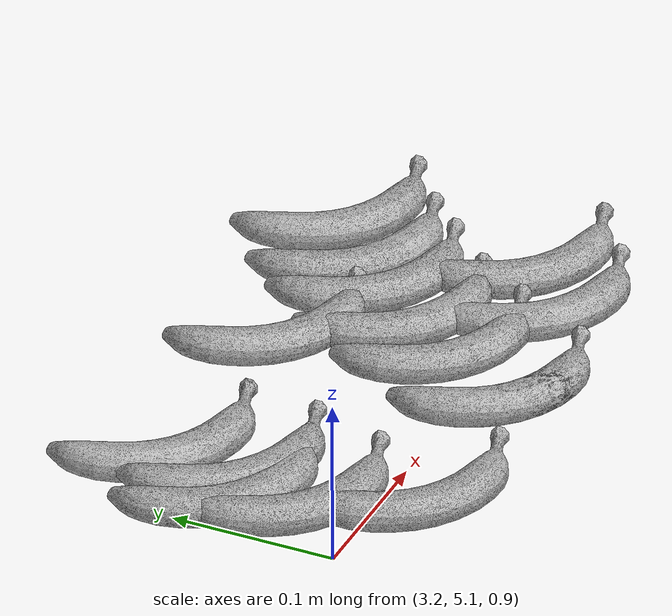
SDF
<sdf version="1.6">
 <world name="default">
  <model name="banana">
   <link name="link_0">
    <inertial>
     <mass>1</mass>
     <inertia>
      <ixx>0.166667</ixx>
      <ixy>0</ixy>
      <ixz>0</ixz>
      <iyy>0.166667</iyy>
      <iyz>0</iyz>
      <izz>0.166667</izz>
     </inertia>
    </inertial>
    <visual name="visual">
     <geometry><mesh><uri>model://banana/meshes/banana.dae</uri><scale>1 1 1</scale></mesh></geometry>
    </visual>
    <collision name="collision">
     <geometry><mesh><uri>model://banana/meshes/banana.dae</uri><scale>1 1 1</scale></mesh></geometry>
     <surface>
      <friction>
       <ode><mu>1</mu><mu2>1</mu2><fdir1>0 0 0</fdir1><slip1>0</slip1><slip2>0</slip2></ode>
       <torsional>
        <coefficient>1</coefficient>
        <patch_radius>0</patch_radius>
        <surface_radius>0</surface_radius>
        <use_patch_radius>1</use_patch_radius>
        <ode><slip>0</slip></ode>
       </torsional>
      </friction>
      <bounce><restitution_coefficient>0</restitution_coefficient><threshold>1e+06</threshold></bounce>
      <contact>
       <collide_without_contact>0</collide_without_contact>
       <collide_without_contact_bitmask>1</collide_without_contact_bitmask>
       <collide_bitmask>1</collide_bitmask>
       <ode>
        <soft_cfm>0</soft_cfm>
        <soft_erp>0.2</soft_erp>
        <kp>1e+13</kp>
        <kd>1</kd>
        <max_vel>0.01</max_vel>
        <min_depth>0</min_depth>
       </ode>
       <bullet>
        <split_impulse>1</split_impulse>
        <split_impulse_penetration_threshold>-0.01</split_impulse_penetration_threshold>
        <soft_cfm>0</soft_cfm>
        <soft_erp>0.2</soft_erp>
        <kp>1e+13</kp>
        <kd>1</kd>
       </bullet>
      </contact>
     </surface>
    </collision>
   </link>
   <static>1</static>
   <pose>3.44462 5.09797 0.868134 0 -0 0</pose>
  </model>
  <model name="banana_clone_0">
   <link name="link_0">
    <inertial>
     <mass>1</mass>
     <inertia>
      <ixx>0.166667</ixx>
      <ixy>0</ixy>
      <ixz>0</ixz>
      <iyy>0.166667</iyy>
      <iyz>0</iyz>
      <izz>0.166667</izz>
     </inertia>
    </inertial>
    <visual name="visual">
     <geometry><mesh><uri>model://banana/meshes/banana.dae</uri><scale>1 1 1</scale></mesh></geometry>
    </visual>
    <collision name="collision">
     <geometry><mesh><uri>model://banana/meshes/banana.dae</uri><scale>1 1 1</scale></mesh></geometry>
     <surface>
      <friction>
       <ode><mu>1</mu><mu2>1</mu2><fdir1>0 0 0</fdir1><slip1>0</slip1><slip2>0</slip2></ode>
       <torsional>
        <coefficient>1</coefficient>
        <patch_radius>0</patch_radius>
        <surface_radius>0</surface_radius>
        <use_patch_radius>1</use_patch_radius>
        <ode><slip>0</slip></ode>
       </torsional>
      </friction>
      <bounce><restitution_coefficient>0</restitution_coefficient><threshold>1e+06</threshold></bounce>
      <contact>
       <collide_without_contact>0</collide_without_contact>
       <collide_without_contact_bitmask>1</collide_without_contact_bitmask>
       <collide_bitmask>1</collide_bitmask>
       <ode>
        <soft_cfm>0</soft_cfm>
        <soft_erp>0.2</soft_erp>
        <kp>1e+13</kp>
        <kd>1</kd>
        <max_vel>0.01</max_vel>
        <min_depth>0</min_depth>
       </ode>
       <bullet>
        <split_impulse>1</split_impulse>
        <split_impulse_penetration_threshold>-0.01</split_impulse_penetration_threshold>
        <soft_cfm>0</soft_cfm>
        <soft_erp>0.2</soft_erp>
        <kp>1e+13</kp>
        <kd>1</kd>
       </bullet>
      </contact>
     </surface>
    </collision>
   </link>
   <static>1</static>
   <pose>3.58927 5.26962 0.868134 0 -0 0</pose>
  </model>
  <model name="banana_clone_1">
   <link name="link_0">
    <inertial>
     <mass>1</mass>
     <inertia>
      <ixx>0.166667</ixx>
      <ixy>0</ixy>
      <ixz>0</ixz>
      <iyy>0.166667</iyy>
      <iyz>0</iyz>
      <izz>0.166667</izz>
     </inertia>
    </inertial>
    <visual name="visual">
     <geometry><mesh><uri>model://banana/meshes/banana.dae</uri><scale>1 1 1</scale></mesh></geometry>
    </visual>
    <collision name="collision">
     <geometry><mesh><uri>model://banana/meshes/banana.dae</uri><scale>1 1 1</scale></mesh></geometry>
     <surface>
      <friction>
       <ode><mu>1</mu><mu2>1</mu2><fdir1>0 0 0</fdir1><slip1>0</slip1><slip2>0</slip2></ode>
       <torsional>
        <coefficient>1</coefficient>
        <patch_radius>0</patch_radius>
        <surface_radius>0</surface_radius>
        <use_patch_radius>1</use_patch_radius>
        <ode><slip>0</slip></ode>
       </torsional>
      </friction>
      <bounce><restitution_coefficient>0</restitution_coefficient><threshold>1e+06</threshold></bounce>
      <contact>
       <collide_without_contact>0</collide_without_contact>
       <collide_without_contact_bitmask>1</collide_without_contact_bitmask>
       <collide_bitmask>1</collide_bitmask>
       <ode>
        <soft_cfm>0</soft_cfm>
        <soft_erp>0.2</soft_erp>
        <kp>1e+13</kp>
        <kd>1</kd>
        <max_vel>0.01</max_vel>
        <min_depth>0</min_depth>
       </ode>
       <bullet>
        <split_impulse>1</split_impulse>
        <split_impulse_penetration_threshold>-0.01</split_impulse_penetration_threshold>
        <soft_cfm>0</soft_cfm>
        <soft_erp>0.2</soft_erp>
        <kp>1e+13</kp>
        <kd>1</kd>
       </bullet>
      </contact>
     </surface>
    </collision>
   </link>
   <static>1</static>
   <pose>3.55243 5.24171 0.868134 0 -0 0</pose>
  </model>
  <model name="banana_clone_2">
   <link name="link_0">
    <inertial>
     <mass>1</mass>
     <inertia>
      <ixx>0.166667</ixx>
      <ixy>0</ixy>
      <ixz>0</ixz>
      <iyy>0.166667</iyy>
      <iyz>0</iyz>
      <izz>0.166667</izz>
     </inertia>
    </inertial>
    <visual name="visual">
     <geometry><mesh><uri>model://banana/meshes/banana.dae</uri><scale>1 1 1</scale></mesh></geometry>
    </visual>
    <collision name="collision">
     <geometry><mesh><uri>model://banana/meshes/banana.dae</uri><scale>1 1 1</scale></mesh></geometry>
     <surface>
      <friction>
       <ode><mu>1</mu><mu2>1</mu2><fdir1>0 0 0</fdir1><slip1>0</slip1><slip2>0</slip2></ode>
       <torsional>
        <coefficient>1</coefficient>
        <patch_radius>0</patch_radius>
        <surface_radius>0</surface_radius>
        <use_patch_radius>1</use_patch_radius>
        <ode><slip>0</slip></ode>
       </torsional>
      </friction>
      <bounce><restitution_coefficient>0</restitution_coefficient><threshold>1e+06</threshold></bounce>
      <contact>
       <collide_without_contact>0</collide_without_contact>
       <collide_without_contact_bitmask>1</collide_without_contact_bitmask>
       <collide_bitmask>1</collide_bitmask>
       <ode>
        <soft_cfm>0</soft_cfm>
        <soft_erp>0.2</soft_erp>
        <kp>1e+13</kp>
        <kd>1</kd>
        <max_vel>0.01</max_vel>
        <min_depth>0</min_depth>
       </ode>
       <bullet>
        <split_impulse>1</split_impulse>
        <split_impulse_penetration_threshold>-0.01</split_impulse_penetration_threshold>
        <soft_cfm>0</soft_cfm>
        <soft_erp>0.2</soft_erp>
        <kp>1e+13</kp>
        <kd>1</kd>
       </bullet>
      </contact>
     </surface>
    </collision>
   </link>
   <static>1</static>
   <pose>3.49792 5.18513 0.868134 0 -0 0</pose>
  </model>
  <model name="banana_clone_3">
   <link name="link_0">
    <inertial>
     <mass>1</mass>
     <inertia>
      <ixx>0.166667</ixx>
      <ixy>0</ixy>
      <ixz>0</ixz>
      <iyy>0.166667</iyy>
      <iyz>0</iyz>
      <izz>0.166667</izz>
     </inertia>
    </inertial>
    <visual name="visual">
     <geometry><mesh><uri>model://banana/meshes/banana.dae</uri><scale>1 1 1</scale></mesh></geometry>
    </visual>
    <collision name="collision">
     <geometry><mesh><uri>model://banana/meshes/banana.dae</uri><scale>1 1 1</scale></mesh></geometry>
     <surface>
      <friction>
       <ode><mu>1</mu><mu2>1</mu2><fdir1>0 0 0</fdir1><slip1>0</slip1><slip2>0</slip2></ode>
       <torsional>
        <coefficient>1</coefficient>
        <patch_radius>0</patch_radius>
        <surface_radius>0</surface_radius>
        <use_patch_radius>1</use_patch_radius>
        <ode><slip>0</slip></ode>
       </torsional>
      </friction>
      <bounce><restitution_coefficient>0</restitution_coefficient><threshold>1e+06</threshold></bounce>
      <contact>
       <collide_without_contact>0</collide_without_contact>
       <collide_without_contact_bitmask>1</collide_without_contact_bitmask>
       <collide_bitmask>1</collide_bitmask>
       <ode>
        <soft_cfm>0</soft_cfm>
        <soft_erp>0.2</soft_erp>
        <kp>1e+13</kp>
        <kd>1</kd>
        <max_vel>0.01</max_vel>
        <min_depth>0</min_depth>
       </ode>
       <bullet>
        <split_impulse>1</split_impulse>
        <split_impulse_penetration_threshold>-0.01</split_impulse_penetration_threshold>
        <soft_cfm>0</soft_cfm>
        <soft_erp>0.2</soft_erp>
        <kp>1e+13</kp>
        <kd>1</kd>
       </bullet>
      </contact>
     </surface>
    </collision>
   </link>
   <static>1</static>
   <pose>3.52892 5.21734 0.868134 0 -0 0</pose>
  </model>
  <model name="banana_clone_6">
   <link name="link_0">
    <inertial>
     <mass>1</mass>
     <inertia>
      <ixx>0.166667</ixx>
      <ixy>0</ixy>
      <ixz>0</ixz>
      <iyy>0.166667</iyy>
      <iyz>0</iyz>
      <izz>0.166667</izz>
     </inertia>
    </inertial>
    <visual name="visual">
     <geometry><mesh><uri>model://banana/meshes/banana.dae</uri><scale>1 1 1</scale></mesh></geometry>
    </visual>
    <collision name="collision">
     <geometry><mesh><uri>model://banana/meshes/banana.dae</uri><scale>1 1 1</scale></mesh></geometry>
     <surface>
      <friction>
       <ode><mu>1</mu><mu2>1</mu2><fdir1>0 0 0</fdir1><slip1>0</slip1><slip2>0</slip2></ode>
       <torsional>
        <coefficient>1</coefficient>
        <patch_radius>0</patch_radius>
        <surface_radius>0</surface_radius>
        <use_patch_radius>1</use_patch_radius>
        <ode><slip>0</slip></ode>
       </torsional>
      </friction>
      <bounce><restitution_coefficient>0</restitution_coefficient><threshold>1e+06</threshold></bounce>
      <contact>
       <collide_without_contact>0</collide_without_contact>
       <collide_without_contact_bitmask>1</collide_without_contact_bitmask>
       <collide_bitmask>1</collide_bitmask>
       <ode>
        <soft_cfm>0</soft_cfm>
        <soft_erp>0.2</soft_erp>
        <kp>1e+13</kp>
        <kd>1</kd>
        <max_vel>0.01</max_vel>
        <min_depth>0</min_depth>
       </ode>
       <bullet>
        <split_impulse>1</split_impulse>
        <split_impulse_penetration_threshold>-0.01</split_impulse_penetration_threshold>
        <soft_cfm>0</soft_cfm>
        <soft_erp>0.2</soft_erp>
        <kp>1e+13</kp>
        <kd>1</kd>
       </bullet>
      </contact>
     </surface>
    </collision>
   </link>
   <static>1</static>
   <pose>3.58449 5.14176 0.868134 0 -0 0</pose>
  </model>
  <model name="banana_clone_7">
   <link name="link_0">
    <inertial>
     <mass>1</mass>
     <inertia>
      <ixx>0.166667</ixx>
      <ixy>0</ixy>
      <ixz>0</ixz>
      <iyy>0.166667</iyy>
      <iyz>0</iyz>
      <izz>0.166667</izz>
     </inertia>
    </inertial>
    <visual name="visual">
     <geometry><mesh><uri>model://banana/meshes/banana.dae</uri><scale>1 1 1</scale></mesh></geometry>
    </visual>
    <collision name="collision">
     <geometry><mesh><uri>model://banana/meshes/banana.dae</uri><scale>1 1 1</scale></mesh></geometry>
     <surface>
      <friction>
       <ode><mu>1</mu><mu2>1</mu2><fdir1>0 0 0</fdir1><slip1>0</slip1><slip2>0</slip2></ode>
       <torsional>
        <coefficient>1</coefficient>
        <patch_radius>0</patch_radius>
        <surface_radius>0</surface_radius>
        <use_patch_radius>1</use_patch_radius>
        <ode><slip>0</slip></ode>
       </torsional>
      </friction>
      <bounce><restitution_coefficient>0</restitution_coefficient><threshold>1e+06</threshold></bounce>
      <contact>
       <collide_without_contact>0</collide_without_contact>
       <collide_without_contact_bitmask>1</collide_without_contact_bitmask>
       <collide_bitmask>1</collide_bitmask>
       <ode>
        <soft_cfm>0</soft_cfm>
        <soft_erp>0.2</soft_erp>
        <kp>1e+13</kp>
        <kd>1</kd>
        <max_vel>0.01</max_vel>
        <min_depth>0</min_depth>
       </ode>
       <bullet>
        <split_impulse>1</split_impulse>
        <split_impulse_penetration_threshold>-0.01</split_impulse_penetration_threshold>
        <soft_cfm>0</soft_cfm>
        <soft_erp>0.2</soft_erp>
        <kp>1e+13</kp>
        <kd>1</kd>
       </bullet>
      </contact>
     </surface>
    </collision>
   </link>
   <static>1</static>
   <pose>3.47415 5.14868 0.868134 0 -0 0</pose>
  </model>
  <model name="banana_clone_8">
   <link name="link_0">
    <inertial>
     <mass>1</mass>
     <inertia>
      <ixx>0.166667</ixx>
      <ixy>0</ixy>
      <ixz>0</ixz>
      <iyy>0.166667</iyy>
      <iyz>0</iyz>
      <izz>0.166667</izz>
     </inertia>
    </inertial>
    <visual name="visual">
     <geometry><mesh><uri>model://banana/meshes/banana.dae</uri><scale>1 1 1</scale></mesh></geometry>
    </visual>
    <collision name="collision">
     <geometry><mesh><uri>model://banana/meshes/banana.dae</uri><scale>1 1 1</scale></mesh></geometry>
     <surface>
      <friction>
       <ode><mu>1</mu><mu2>1</mu2><fdir1>0 0 0</fdir1><slip1>0</slip1><slip2>0</slip2></ode>
       <torsional>
        <coefficient>1</coefficient>
        <patch_radius>0</patch_radius>
        <surface_radius>0</surface_radius>
        <use_patch_radius>1</use_patch_radius>
        <ode><slip>0</slip></ode>
       </torsional>
      </friction>
      <bounce><restitution_coefficient>0</restitution_coefficient><threshold>1e+06</threshold></bounce>
      <contact>
       <collide_without_contact>0</collide_without_contact>
       <collide_without_contact_bitmask>1</collide_without_contact_bitmask>
       <collide_bitmask>1</collide_bitmask>
       <ode>
        <soft_cfm>0</soft_cfm>
        <soft_erp>0.2</soft_erp>
        <kp>1e+13</kp>
        <kd>1</kd>
        <max_vel>0.01</max_vel>
        <min_depth>0</min_depth>
       </ode>
       <bullet>
        <split_impulse>1</split_impulse>
        <split_impulse_penetration_threshold>-0.01</split_impulse_penetration_threshold>
        <soft_cfm>0</soft_cfm>
        <soft_erp>0.2</soft_erp>
        <kp>1e+13</kp>
        <kd>1</kd>
       </bullet>
      </contact>
     </surface>
    </collision>
   </link>
   <static>1</static>
   <pose>3.45112 5.24805 0.868134 0 -0 0</pose>
  </model>
  <model name="banana_clone_10">
   <link name="link_0">
    <inertial>
     <mass>1</mass>
     <inertia>
      <ixx>0.166667</ixx>
      <ixy>0</ixy>
      <ixz>0</ixz>
      <iyy>0.166667</iyy>
      <iyz>0</iyz>
      <izz>0.166667</izz>
     </inertia>
    </inertial>
    <visual name="visual">
     <geometry><mesh><uri>model://banana/meshes/banana.dae</uri><scale>1 1 1</scale></mesh></geometry>
    </visual>
    <collision name="collision">
     <geometry><mesh><uri>model://banana/meshes/banana.dae</uri><scale>1 1 1</scale></mesh></geometry>
     <surface>
      <friction>
       <ode><mu>1</mu><mu2>1</mu2><fdir1>0 0 0</fdir1><slip1>0</slip1><slip2>0</slip2></ode>
       <torsional>
        <coefficient>1</coefficient>
        <patch_radius>0</patch_radius>
        <surface_radius>0</surface_radius>
        <use_patch_radius>1</use_patch_radius>
        <ode><slip>0</slip></ode>
       </torsional>
      </friction>
      <bounce><restitution_coefficient>0</restitution_coefficient><threshold>1e+06</threshold></bounce>
      <contact>
       <collide_without_contact>0</collide_without_contact>
       <collide_without_contact_bitmask>1</collide_without_contact_bitmask>
       <collide_bitmask>1</collide_bitmask>
       <ode>
        <soft_cfm>0</soft_cfm>
        <soft_erp>0.2</soft_erp>
        <kp>1e+13</kp>
        <kd>1</kd>
        <max_vel>0.01</max_vel>
        <min_depth>0</min_depth>
       </ode>
       <bullet>
        <split_impulse>1</split_impulse>
        <split_impulse_penetration_threshold>-0.01</split_impulse_penetration_threshold>
        <soft_cfm>0</soft_cfm>
        <soft_erp>0.2</soft_erp>
        <kp>1e+13</kp>
        <kd>1</kd>
       </bullet>
      </contact>
     </surface>
    </collision>
   </link>
   <static>1</static>
   <pose>3.54266 5.11314 0.868134 0 -0 0</pose>
  </model>
  <model name="banana_clone_19">
   <link name="link_0">
    <inertial>
     <mass>1</mass>
     <inertia>
      <ixx>0.166667</ixx>
      <ixy>0</ixy>
      <ixz>0</ixz>
      <iyy>0.166667</iyy>
      <iyz>0</iyz>
      <izz>0.166667</izz>
     </inertia>
    </inertial>
    <visual name="visual">
     <geometry><mesh><uri>model://banana/meshes/banana.dae</uri><scale>1 1 1</scale></mesh></geometry>
    </visual>
    <collision name="collision">
     <geometry><mesh><uri>model://banana/meshes/banana.dae</uri><scale>1 1 1</scale></mesh></geometry>
     <surface>
      <friction>
       <ode><mu>1</mu><mu2>1</mu2><fdir1>0 0 0</fdir1><slip1>0</slip1><slip2>0</slip2></ode>
       <torsional>
        <coefficient>1</coefficient>
        <patch_radius>0</patch_radius>
        <surface_radius>0</surface_radius>
        <use_patch_radius>1</use_patch_radius>
        <ode><slip>0</slip></ode>
       </torsional>
      </friction>
      <bounce><restitution_coefficient>0</restitution_coefficient><threshold>1e+06</threshold></bounce>
      <contact>
       <collide_without_contact>0</collide_without_contact>
       <collide_without_contact_bitmask>1</collide_without_contact_bitmask>
       <collide_bitmask>1</collide_bitmask>
       <ode>
        <soft_cfm>0</soft_cfm>
        <soft_erp>0.2</soft_erp>
        <kp>1e+13</kp>
        <kd>1</kd>
        <max_vel>0.01</max_vel>
        <min_depth>0</min_depth>
       </ode>
       <bullet>
        <split_impulse>1</split_impulse>
        <split_impulse_penetration_threshold>-0.01</split_impulse_penetration_threshold>
        <soft_cfm>0</soft_cfm>
        <soft_erp>0.2</soft_erp>
        <kp>1e+13</kp>
        <kd>1</kd>
       </bullet>
      </contact>
     </surface>
    </collision>
   </link>
   <static>1</static>
   <pose>3.28779 5.15794 0.868134 0 -0 0</pose>
  </model>
  <model name="banana_clone_20">
   <link name="link_0">
    <inertial>
     <mass>1</mass>
     <inertia>
      <ixx>0.166667</ixx>
      <ixy>0</ixy>
      <ixz>0</ixz>
      <iyy>0.166667</iyy>
      <iyz>0</iyz>
      <izz>0.166667</izz>
     </inertia>
    </inertial>
    <visual name="visual">
     <geometry><mesh><uri>model://banana/meshes/banana.dae</uri><scale>1 1 1</scale></mesh></geometry>
    </visual>
    <collision name="collision">
     <geometry><mesh><uri>model://banana/meshes/banana.dae</uri><scale>1 1 1</scale></mesh></geometry>
     <surface>
      <friction>
       <ode><mu>1</mu><mu2>1</mu2><fdir1>0 0 0</fdir1><slip1>0</slip1><slip2>0</slip2></ode>
       <torsional>
        <coefficient>1</coefficient>
        <patch_radius>0</patch_radius>
        <surface_radius>0</surface_radius>
        <use_patch_radius>1</use_patch_radius>
        <ode><slip>0</slip></ode>
       </torsional>
      </friction>
      <bounce><restitution_coefficient>0</restitution_coefficient><threshold>1e+06</threshold></bounce>
      <contact>
       <collide_without_contact>0</collide_without_contact>
       <collide_without_contact_bitmask>1</collide_without_contact_bitmask>
       <collide_bitmask>1</collide_bitmask>
       <ode>
        <soft_cfm>0</soft_cfm>
        <soft_erp>0.2</soft_erp>
        <kp>1e+13</kp>
        <kd>1</kd>
        <max_vel>0.01</max_vel>
        <min_depth>0</min_depth>
       </ode>
       <bullet>
        <split_impulse>1</split_impulse>
        <split_impulse_penetration_threshold>-0.01</split_impulse_penetration_threshold>
        <soft_cfm>0</soft_cfm>
        <soft_erp>0.2</soft_erp>
        <kp>1e+13</kp>
        <kd>1</kd>
       </bullet>
      </contact>
     </surface>
    </collision>
   </link>
   <static>1</static>
   <pose>3.27898 5.19892 0.868134 0 -0 0</pose>
  </model>
  <model name="banana_clone_21">
   <link name="link_0">
    <inertial>
     <mass>1</mass>
     <inertia>
      <ixx>0.166667</ixx>
      <ixy>0</ixy>
      <ixz>0</ixz>
      <iyy>0.166667</iyy>
      <iyz>0</iyz>
      <izz>0.166667</izz>
     </inertia>
    </inertial>
    <visual name="visual">
     <geometry><mesh><uri>model://banana/meshes/banana.dae</uri><scale>1 1 1</scale></mesh></geometry>
    </visual>
    <collision name="collision">
     <geometry><mesh><uri>model://banana/meshes/banana.dae</uri><scale>1 1 1</scale></mesh></geometry>
     <surface>
      <friction>
       <ode><mu>1</mu><mu2>1</mu2><fdir1>0 0 0</fdir1><slip1>0</slip1><slip2>0</slip2></ode>
       <torsional>
        <coefficient>1</coefficient>
        <patch_radius>0</patch_radius>
        <surface_radius>0</surface_radius>
        <use_patch_radius>1</use_patch_radius>
        <ode><slip>0</slip></ode>
       </torsional>
      </friction>
      <bounce><restitution_coefficient>0</restitution_coefficient><threshold>1e+06</threshold></bounce>
      <contact>
       <collide_without_contact>0</collide_without_contact>
       <collide_without_contact_bitmask>1</collide_without_contact_bitmask>
       <collide_bitmask>1</collide_bitmask>
       <ode>
        <soft_cfm>0</soft_cfm>
        <soft_erp>0.2</soft_erp>
        <kp>1e+13</kp>
        <kd>1</kd>
        <max_vel>0.01</max_vel>
        <min_depth>0</min_depth>
       </ode>
       <bullet>
        <split_impulse>1</split_impulse>
        <split_impulse_penetration_threshold>-0.01</split_impulse_penetration_threshold>
        <soft_cfm>0</soft_cfm>
        <soft_erp>0.2</soft_erp>
        <kp>1e+13</kp>
        <kd>1</kd>
       </bullet>
      </contact>
     </surface>
    </collision>
   </link>
   <static>1</static>
   <pose>3.30734 5.2527 0.868134 0 -0 0</pose>
  </model>
  <model name="banana_clone_27">
   <link name="link_0">
    <inertial>
     <mass>1</mass>
     <inertia>
      <ixx>0.166667</ixx>
      <ixy>0</ixy>
      <ixz>0</ixz>
      <iyy>0.166667</iyy>
      <iyz>0</iyz>
      <izz>0.166667</izz>
     </inertia>
    </inertial>
    <visual name="visual">
     <geometry><mesh><uri>model://banana/meshes/banana.dae</uri><scale>1 1 1</scale></mesh></geometry>
    </visual>
    <collision name="collision">
     <geometry><mesh><uri>model://banana/meshes/banana.dae</uri><scale>1 1 1</scale></mesh></geometry>
     <surface>
      <friction>
       <ode><mu>1</mu><mu2>1</mu2><fdir1>0 0 0</fdir1><slip1>0</slip1><slip2>0</slip2></ode>
       <torsional>
        <coefficient>1</coefficient>
        <patch_radius>0</patch_radius>
        <surface_radius>0</surface_radius>
        <use_patch_radius>1</use_patch_radius>
        <ode><slip>0</slip></ode>
       </torsional>
      </friction>
      <bounce><restitution_coefficient>0</restitution_coefficient><threshold>1e+06</threshold></bounce>
      <contact>
       <collide_without_contact>0</collide_without_contact>
       <collide_without_contact_bitmask>1</collide_without_contact_bitmask>
       <collide_bitmask>1</collide_bitmask>
       <ode>
        <soft_cfm>0</soft_cfm>
        <soft_erp>0.2</soft_erp>
        <kp>1e+13</kp>
        <kd>1</kd>
        <max_vel>0.01</max_vel>
        <min_depth>0</min_depth>
       </ode>
       <bullet>
        <split_impulse>1</split_impulse>
        <split_impulse_penetration_threshold>-0.01</split_impulse_penetration_threshold>
        <soft_cfm>0</soft_cfm>
        <soft_erp>0.2</soft_erp>
        <kp>1e+13</kp>
        <kd>1</kd>
       </bullet>
      </contact>
     </surface>
    </collision>
   </link>
   <static>1</static>
   <pose>3.32106 5.09669 0.868134 0 -0 0</pose>
  </model>
  <model name="banana_clone_28">
   <link name="link_0">
    <inertial>
     <mass>1</mass>
     <inertia>
      <ixx>0.166667</ixx>
      <ixy>0</ixy>
      <ixz>0</ixz>
      <iyy>0.166667</iyy>
      <iyz>0</iyz>
      <izz>0.166667</izz>
     </inertia>
    </inertial>
    <visual name="visual">
     <geometry><mesh><uri>model://banana/meshes/banana.dae</uri><scale>1 1 1</scale></mesh></geometry>
    </visual>
    <collision name="collision">
     <geometry><mesh><uri>model://banana/meshes/banana.dae</uri><scale>1 1 1</scale></mesh></geometry>
     <surface>
      <friction>
       <ode><mu>1</mu><mu2>1</mu2><fdir1>0 0 0</fdir1><slip1>0</slip1><slip2>0</slip2></ode>
       <torsional>
        <coefficient>1</coefficient>
        <patch_radius>0</patch_radius>
        <surface_radius>0</surface_radius>
        <use_patch_radius>1</use_patch_radius>
        <ode><slip>0</slip></ode>
       </torsional>
      </friction>
      <bounce><restitution_coefficient>0</restitution_coefficient><threshold>1e+06</threshold></bounce>
      <contact>
       <collide_without_contact>0</collide_without_contact>
       <collide_without_contact_bitmask>1</collide_without_contact_bitmask>
       <collide_bitmask>1</collide_bitmask>
       <ode>
        <soft_cfm>0</soft_cfm>
        <soft_erp>0.2</soft_erp>
        <kp>1e+13</kp>
        <kd>1</kd>
        <max_vel>0.01</max_vel>
        <min_depth>0</min_depth>
       </ode>
       <bullet>
        <split_impulse>1</split_impulse>
        <split_impulse_penetration_threshold>-0.01</split_impulse_penetration_threshold>
        <soft_cfm>0</soft_cfm>
        <soft_erp>0.2</soft_erp>
        <kp>1e+13</kp>
        <kd>1</kd>
       </bullet>
      </contact>
     </surface>
    </collision>
   </link>
   <static>1</static>
   <pose>3.30262 5.20539 0.868134 0 -0 0</pose>
  </model>
 </world>
</sdf>
